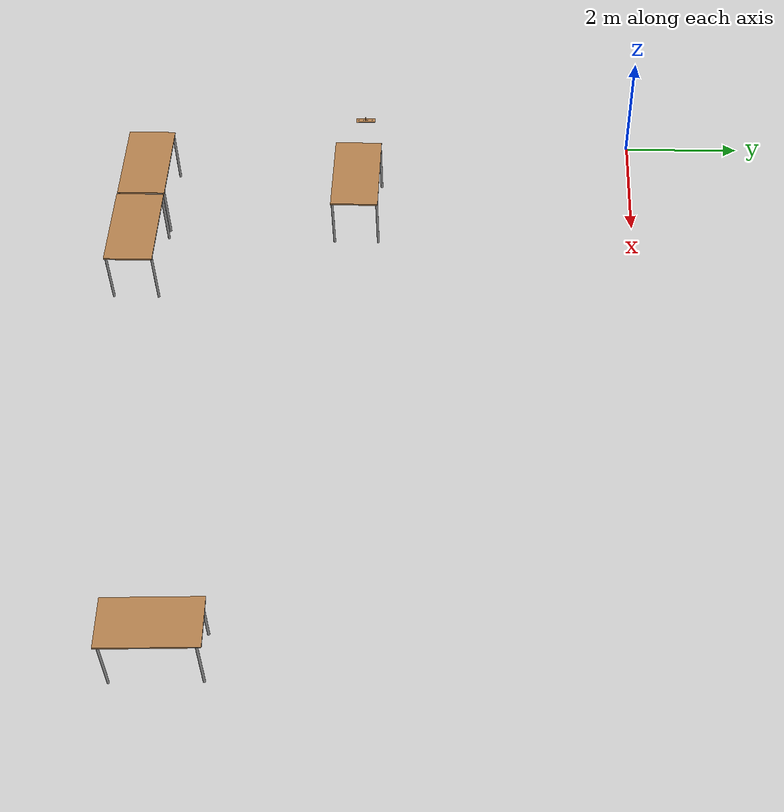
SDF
<sdf version="1.6">
 <world name="default">
  <model name="ground_plane">
   <static>1</static>
   <link name="link">
    <collision name="collision">
     <geometry><plane><normal>0 0 1</normal><size>100 100</size></plane></geometry>
     <surface>
      <contact><collide_bitmask>65535</collide_bitmask></contact>
      <friction><ode><mu>100</mu><mu2>50</mu2></ode></friction>
     </surface>
    </collision>
    <visual name="visual">
     <cast_shadows>0</cast_shadows>
     <geometry><plane><normal>0 0 1</normal><size>100 100</size></plane></geometry>
     <material>
      <script><uri>file://media/materials/scripts/gazebo.material</uri><name>Gazebo/Grey</name></script>
     </material>
    </visual>
   </link>
  </model>
  <model name="table_0">
   <static>1</static>
   <link name="link">
    <collision name="surface">
     <pose>0 0 1 0 -0 0</pose>
     <geometry><box><size>1.5 0.8 0.03</size></box></geometry>
     <surface><friction><ode><mu>0.6</mu><mu2>0.6</mu2></ode></friction></surface>
    </collision>
    <visual name="visual1">
     <pose>0 0 1 0 -0 0</pose>
     <geometry><box><size>1.5 0.8 0.03</size></box></geometry>
     <material>
      <script><uri>file://media/materials/scripts/gazebo.material</uri><name>Gazebo/Wood</name></script>
     </material>
    </visual>
    <collision name="front_left_leg">
     <pose>0.68 0.38 0.5 0 -0 0</pose>
     <geometry><cylinder><radius>0.02</radius><length>1</length></cylinder></geometry>
    </collision>
    <visual name="front_left_leg">
     <pose>0.68 0.38 0.5 0 -0 0</pose>
     <geometry><cylinder><radius>0.02</radius><length>1</length></cylinder></geometry>
     <material>
      <script><uri>file://media/materials/scripts/gazebo.material</uri><name>Gazebo/Grey</name></script>
     </material>
    </visual>
    <collision name="front_right_leg">
     <pose>0.68 -0.38 0.5 0 -0 0</pose>
     <geometry><cylinder><radius>0.02</radius><length>1</length></cylinder></geometry>
    </collision>
    <visual name="front_right_leg">
     <pose>0.68 -0.38 0.5 0 -0 0</pose>
     <geometry><cylinder><radius>0.02</radius><length>1</length></cylinder></geometry>
     <material>
      <script><uri>file://media/materials/scripts/gazebo.material</uri><name>Gazebo/Grey</name></script>
     </material>
    </visual>
    <collision name="back_right_leg">
     <pose>-0.68 -0.38 0.5 0 -0 0</pose>
     <geometry><cylinder><radius>0.02</radius><length>1</length></cylinder></geometry>
    </collision>
    <visual name="back_right_leg">
     <pose>-0.68 -0.38 0.5 0 -0 0</pose>
     <geometry><cylinder><radius>0.02</radius><length>1</length></cylinder></geometry>
     <material>
      <script><uri>file://media/materials/scripts/gazebo.material</uri><name>Gazebo/Grey</name></script>
     </material>
    </visual>
    <collision name="back_left_leg">
     <pose>-0.68 0.38 0.5 0 -0 0</pose>
     <geometry><cylinder><radius>0.02</radius><length>1</length></cylinder></geometry>
    </collision>
    <visual name="back_left_leg">
     <pose>-0.68 0.38 0.5 0 -0 0</pose>
     <geometry><cylinder><radius>0.02</radius><length>1</length></cylinder></geometry>
     <material>
      <script><uri>file://media/materials/scripts/gazebo.material</uri><name>Gazebo/Grey</name></script>
     </material>
    </visual>
   </link>
   <pose>1.75648 -4.81123 0 0 -0 0</pose>
  </model>
  <model name="table_3">
   <static>1</static>
   <link name="link">
    <collision name="surface">
     <pose>0 0 1 0 -0 0</pose>
     <geometry><box><size>1.5 0.8 0.03</size></box></geometry>
     <surface><friction><ode><mu>0.6</mu><mu2>0.6</mu2></ode></friction></surface>
    </collision>
    <visual name="visual1">
     <pose>0 0 1 0 -0 0</pose>
     <geometry><box><size>1.5 0.8 0.03</size></box></geometry>
     <material>
      <script><uri>file://media/materials/scripts/gazebo.material</uri><name>Gazebo/Wood</name></script>
     </material>
    </visual>
    <collision name="front_left_leg">
     <pose>0.68 0.38 0.5 0 -0 0</pose>
     <geometry><cylinder><radius>0.02</radius><length>1</length></cylinder></geometry>
    </collision>
    <visual name="front_left_leg">
     <pose>0.68 0.38 0.5 0 -0 0</pose>
     <geometry><cylinder><radius>0.02</radius><length>1</length></cylinder></geometry>
     <material>
      <script><uri>file://media/materials/scripts/gazebo.material</uri><name>Gazebo/Grey</name></script>
     </material>
    </visual>
    <collision name="front_right_leg">
     <pose>0.68 -0.38 0.5 0 -0 0</pose>
     <geometry><cylinder><radius>0.02</radius><length>1</length></cylinder></geometry>
    </collision>
    <visual name="front_right_leg">
     <pose>0.68 -0.38 0.5 0 -0 0</pose>
     <geometry><cylinder><radius>0.02</radius><length>1</length></cylinder></geometry>
     <material>
      <script><uri>file://media/materials/scripts/gazebo.material</uri><name>Gazebo/Grey</name></script>
     </material>
    </visual>
    <collision name="back_right_leg">
     <pose>-0.68 -0.38 0.5 0 -0 0</pose>
     <geometry><cylinder><radius>0.02</radius><length>1</length></cylinder></geometry>
    </collision>
    <visual name="back_right_leg">
     <pose>-0.68 -0.38 0.5 0 -0 0</pose>
     <geometry><cylinder><radius>0.02</radius><length>1</length></cylinder></geometry>
     <material>
      <script><uri>file://media/materials/scripts/gazebo.material</uri><name>Gazebo/Grey</name></script>
     </material>
    </visual>
    <collision name="back_left_leg">
     <pose>-0.68 0.38 0.5 0 -0 0</pose>
     <geometry><cylinder><radius>0.02</radius><length>1</length></cylinder></geometry>
    </collision>
    <visual name="back_left_leg">
     <pose>-0.68 0.38 0.5 0 -0 0</pose>
     <geometry><cylinder><radius>0.02</radius><length>1</length></cylinder></geometry>
     <material>
      <script><uri>file://media/materials/scripts/gazebo.material</uri><name>Gazebo/Grey</name></script>
     </material>
    </visual>
   </link>
   <pose>3.09695 -8.46773 0 0 -0 0</pose>
  </model>
  <model name="table_4">
   <static>1</static>
   <link name="link">
    <collision name="surface">
     <pose>0 0 1 0 -0 0</pose>
     <geometry><box><size>1.5 0.8 0.03</size></box></geometry>
     <surface><friction><ode><mu>0.6</mu><mu2>0.6</mu2></ode></friction></surface>
    </collision>
    <visual name="visual1">
     <pose>0 0 1 0 -0 0</pose>
     <geometry><box><size>1.5 0.8 0.03</size></box></geometry>
     <material>
      <script><uri>file://media/materials/scripts/gazebo.material</uri><name>Gazebo/Wood</name></script>
     </material>
    </visual>
    <collision name="front_left_leg">
     <pose>0.68 0.38 0.5 0 -0 0</pose>
     <geometry><cylinder><radius>0.02</radius><length>1</length></cylinder></geometry>
    </collision>
    <visual name="front_left_leg">
     <pose>0.68 0.38 0.5 0 -0 0</pose>
     <geometry><cylinder><radius>0.02</radius><length>1</length></cylinder></geometry>
     <material>
      <script><uri>file://media/materials/scripts/gazebo.material</uri><name>Gazebo/Grey</name></script>
     </material>
    </visual>
    <collision name="front_right_leg">
     <pose>0.68 -0.38 0.5 0 -0 0</pose>
     <geometry><cylinder><radius>0.02</radius><length>1</length></cylinder></geometry>
    </collision>
    <visual name="front_right_leg">
     <pose>0.68 -0.38 0.5 0 -0 0</pose>
     <geometry><cylinder><radius>0.02</radius><length>1</length></cylinder></geometry>
     <material>
      <script><uri>file://media/materials/scripts/gazebo.material</uri><name>Gazebo/Grey</name></script>
     </material>
    </visual>
    <collision name="back_right_leg">
     <pose>-0.68 -0.38 0.5 0 -0 0</pose>
     <geometry><cylinder><radius>0.02</radius><length>1</length></cylinder></geometry>
    </collision>
    <visual name="back_right_leg">
     <pose>-0.68 -0.38 0.5 0 -0 0</pose>
     <geometry><cylinder><radius>0.02</radius><length>1</length></cylinder></geometry>
     <material>
      <script><uri>file://media/materials/scripts/gazebo.material</uri><name>Gazebo/Grey</name></script>
     </material>
    </visual>
    <collision name="back_left_leg">
     <pose>-0.68 0.38 0.5 0 -0 0</pose>
     <geometry><cylinder><radius>0.02</radius><length>1</length></cylinder></geometry>
    </collision>
    <visual name="back_left_leg">
     <pose>-0.68 0.38 0.5 0 -0 0</pose>
     <geometry><cylinder><radius>0.02</radius><length>1</length></cylinder></geometry>
     <material>
      <script><uri>file://media/materials/scripts/gazebo.material</uri><name>Gazebo/Grey</name></script>
     </material>
    </visual>
   </link>
   <pose>1.56083 -8.46222 0 0 -0 0</pose>
  </model>
  <model name="table_14">
   <static>1</static>
   <link name="link">
    <collision name="surface">
     <pose>0 0 1 0 -0 0</pose>
     <geometry><box><size>1.5 0.8 0.03</size></box></geometry>
     <surface><friction><ode><mu>0.6</mu><mu2>0.6</mu2></ode></friction></surface>
    </collision>
    <visual name="visual1">
     <pose>0 0 1 0 -0 0</pose>
     <geometry><box><size>1.5 0.8 0.03</size></box></geometry>
     <material>
      <script><uri>file://media/materials/scripts/gazebo.material</uri><name>Gazebo/Wood</name></script>
     </material>
    </visual>
    <collision name="front_left_leg">
     <pose>0.68 0.38 0.5 0 -0 0</pose>
     <geometry><cylinder><radius>0.02</radius><length>1</length></cylinder></geometry>
    </collision>
    <visual name="front_left_leg">
     <pose>0.68 0.38 0.5 0 -0 0</pose>
     <geometry><cylinder><radius>0.02</radius><length>1</length></cylinder></geometry>
     <material>
      <script><uri>file://media/materials/scripts/gazebo.material</uri><name>Gazebo/Grey</name></script>
     </material>
    </visual>
    <collision name="front_right_leg">
     <pose>0.68 -0.38 0.5 0 -0 0</pose>
     <geometry><cylinder><radius>0.02</radius><length>1</length></cylinder></geometry>
    </collision>
    <visual name="front_right_leg">
     <pose>0.68 -0.38 0.5 0 -0 0</pose>
     <geometry><cylinder><radius>0.02</radius><length>1</length></cylinder></geometry>
     <material>
      <script><uri>file://media/materials/scripts/gazebo.material</uri><name>Gazebo/Grey</name></script>
     </material>
    </visual>
    <collision name="back_right_leg">
     <pose>-0.68 -0.38 0.5 0 -0 0</pose>
     <geometry><cylinder><radius>0.02</radius><length>1</length></cylinder></geometry>
    </collision>
    <visual name="back_right_leg">
     <pose>-0.68 -0.38 0.5 0 -0 0</pose>
     <geometry><cylinder><radius>0.02</radius><length>1</length></cylinder></geometry>
     <material>
      <script><uri>file://media/materials/scripts/gazebo.material</uri><name>Gazebo/Grey</name></script>
     </material>
    </visual>
    <collision name="back_left_leg">
     <pose>-0.68 0.38 0.5 0 -0 0</pose>
     <geometry><cylinder><radius>0.02</radius><length>1</length></cylinder></geometry>
    </collision>
    <visual name="back_left_leg">
     <pose>-0.68 0.38 0.5 0 -0 0</pose>
     <geometry><cylinder><radius>0.02</radius><length>1</length></cylinder></geometry>
     <material>
      <script><uri>file://media/materials/scripts/gazebo.material</uri><name>Gazebo/Grey</name></script>
     </material>
    </visual>
   </link>
   <pose>10.6267 -7.17024 0 0 -0 1.60543</pose>
  </model>
  <model name="wooden_peg_board">
   <frame name="wooden_board::__model__"/>
   <link name="wooden_board::base">
    <pose>0 0 0.00523 0 -0 0</pose>
    <inertial>
     <mass>0.2765</mass>
     <inertia>
      <ixx>0.0025148</ixx>
      <ixy>0</ixy>
      <ixz>0</ixz>
      <iyy>0.00024037</iyy>
      <iyz>0</iyz>
      <izz>0.00275013</izz>
     </inertia>
    </inertial>
    <collision name="collision">
     <geometry><box><size>0.1016 0.3302 0.01046</size></box></geometry>
     <surface>
      <contact>
       <poissons_ratio>0.347</poissons_ratio>
       <elastic_modulus>8.8e+09</elastic_modulus>
       <ode><kp>100000</kp><kd>100</kd><max_vel>100</max_vel><min_depth>0.001</min_depth></ode>
      </contact>
      <friction>
       <torsional>
        <coefficient>1</coefficient>
        <use_patch_radius>0</use_patch_radius>
        <surface_radius>0.01</surface_radius>
       </torsional>
      </friction>
     </surface>
    </collision>
    <visual name="visual">
     <geometry><box><size>0.1016 0.3302 0.01046</size></box></geometry>
     <material>
      <script><uri>file://media/materials/scripts/gazebo.material</uri><name>Gazebo/Wood</name></script>
     </material>
    </visual>
    <visual name="tee_nut_1">
     <pose>0 -0.116 0 0 -0 0</pose>
     <geometry><cylinder><radius>0.00635</radius><length>0.0105646</length></cylinder></geometry>
     <material>
      <script><uri>file://media/materials/scripts/gazebo.material</uri><name>Gazebo/Grey</name></script>
     </material>
    </visual>
    <visual name="tee_nut_2">
     <pose>0 -0.038 0 0 -0 0</pose>
     <geometry><cylinder><radius>0.00635</radius><length>0.0105646</length></cylinder></geometry>
     <material>
      <script><uri>file://media/materials/scripts/gazebo.material</uri><name>Gazebo/Grey</name></script>
     </material>
    </visual>
    <visual name="tee_nut_3">
     <pose>0 0.038 0 0 -0 0</pose>
     <geometry><cylinder><radius>0.00635</radius><length>0.0105646</length></cylinder></geometry>
     <material>
      <script><uri>file://media/materials/scripts/gazebo.material</uri><name>Gazebo/Grey</name></script>
     </material>
    </visual>
    <visual name="tee_nut_4">
     <pose>0 0.116 0 0 -0 0</pose>
     <geometry><cylinder><radius>0.00635</radius><length>0.0105646</length></cylinder></geometry>
     <material>
      <script><uri>file://media/materials/scripts/gazebo.material</uri><name>Gazebo/Grey</name></script>
     </material>
    </visual>
   </link>
   <frame name="peg::__model__"><pose>0 0.116 0 0 -0 0</pose></frame>
   <link name="peg::link">
    <pose>0 0 0.04 0 -0 0</pose>
    <inertial>
     <mass>0.0175</mass>
     <inertia>
      <ixx>9.74923e-06</ixx>
      <ixy>0</ixy>
      <ixz>0</ixz>
      <iyy>9.74923e-06</iyy>
      <iyz>0</iyz>
      <izz>8.31797e-07</izz>
     </inertia>
    </inertial>
    <collision name="collision">
     <geometry><cylinder><radius>0.00975</radius><length>0.08</length></cylinder></geometry>
     <surface>
      <contact>
       <poissons_ratio>0.347</poissons_ratio>
       <elastic_modulus>8.8e+09</elastic_modulus>
       <ode><kp>100000</kp><kd>100</kd><max_vel>100</max_vel><min_depth>0.001</min_depth></ode>
      </contact>
      <friction>
       <torsional>
        <coefficient>1</coefficient>
        <use_patch_radius>0</use_patch_radius>
        <surface_radius>0.01</surface_radius>
       </torsional>
      </friction>
     </surface>
    </collision>
    <visual name="visual">
     <geometry><cylinder><radius>0.00975</radius><length>0.08</length></cylinder></geometry>
     <material>
      <script><uri>file://media/materials/scripts/gazebo.material</uri><name>Gazebo/Wood</name></script>
     </material>
    </visual>
   </link>
   <joint name="board_peg" type="revolute">
    <parent>wooden_board::base</parent>
    <child>peg::link</child>
    <axis>
     <xyz>0 0 1</xyz>
     <limit><upper>0</upper><lower>0</lower></limit>
     <dynamics><spring_reference>0</spring_reference><spring_stiffness>0</spring_stiffness></dynamics>
     <use_parent_model_frame>0</use_parent_model_frame>
    </axis>
   </joint>
   <pose>0.436584 -4.71883 1.014 0 3e-06 0.026997</pose>
  </model>
 </world>
</sdf>
